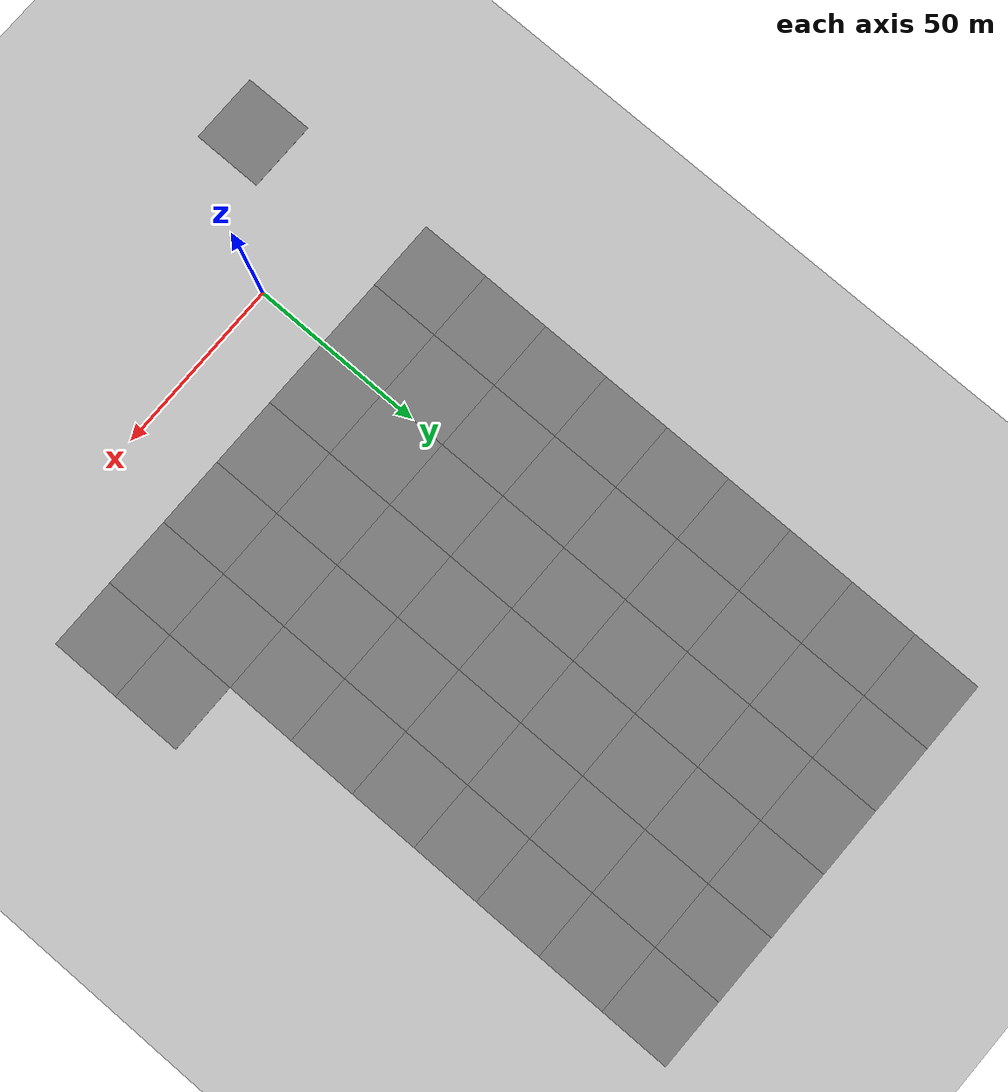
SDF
<sdf version="1.9">
 <world name="test_city_4">
  <model name="ground_plane">
   <static>true</static>
   <link name="link">
    <collision name="collision">
     <geometry><plane><normal>0 0 1</normal><size>500 500</size></plane></geometry>
    </collision>
    <visual name="visual">
     <geometry><plane><normal>0 0 1</normal><size>500 500</size></plane></geometry>
     <material>
      <ambient>0.8 0.8 0.8 1</ambient>
      <diffuse>0.8 0.8 0.8 1</diffuse>
      <specular>0.8 0.8 0.8 1</specular>
     </material>
    </visual>
   </link>
  </model>
  <model name="asphalt_plane">
   <static>1</static>
   <link name="link">
    <collision name="collision"><geometry><box><size>20 20 0.1</size></box></geometry></collision>
    <visual name="visual">
     <cast_shadows>0</cast_shadows>
     <geometry><box><size>20 20 0.1</size></box></geometry>
     <material>
      <ambient>0.5 0.5 0.5 1</ambient>
      <diffuse>0.5 0.5 0.5 1</diffuse>
      <specular>0.2 0.2 0.2 1</specular>
      <pbr><metal><albedo_map>model://asphalt_plane/materials/textures/tarmac.png</albedo_map></metal></pbr>
     </material>
    </visual>
   </link>
   <pose>-30 -30 0 0 0 0</pose>
  </model>
  <model name="asphalt_plane_3">
   <static>1</static>
   <link name="link">
    <collision name="collision"><geometry><box><size>20 20 0.1</size></box></geometry></collision>
    <visual name="visual">
     <cast_shadows>0</cast_shadows>
     <geometry><box><size>20 20 0.1</size></box></geometry>
     <material>
      <ambient>0.5 0.5 0.5 1</ambient>
      <diffuse>0.5 0.5 0.5 1</diffuse>
      <specular>0.2 0.2 0.2 1</specular>
      <pbr><metal><albedo_map>model://asphalt_plane/materials/textures/tarmac.png</albedo_map></metal></pbr>
     </material>
    </visual>
   </link>
   <pose>-30 30 0 0 0 0</pose>
  </model>
  <model name="asphalt_plane_4">
   <static>1</static>
   <link name="link">
    <collision name="collision"><geometry><box><size>20 20 0.1</size></box></geometry></collision>
    <visual name="visual">
     <cast_shadows>0</cast_shadows>
     <geometry><box><size>20 20 0.1</size></box></geometry>
     <material>
      <ambient>0.5 0.5 0.5 1</ambient>
      <diffuse>0.5 0.5 0.5 1</diffuse>
      <specular>0.2 0.2 0.2 1</specular>
      <pbr><metal><albedo_map>model://asphalt_plane/materials/textures/tarmac.png</albedo_map></metal></pbr>
     </material>
    </visual>
   </link>
   <pose>-30 50 0 0 0 0</pose>
  </model>
  <model name="asphalt_plane_5">
   <static>1</static>
   <link name="link">
    <collision name="collision"><geometry><box><size>20 20 0.1</size></box></geometry></collision>
    <visual name="visual">
     <cast_shadows>0</cast_shadows>
     <geometry><box><size>20 20 0.1</size></box></geometry>
     <material>
      <ambient>0.5 0.5 0.5 1</ambient>
      <diffuse>0.5 0.5 0.5 1</diffuse>
      <specular>0.2 0.2 0.2 1</specular>
      <pbr><metal><albedo_map>model://asphalt_plane/materials/textures/tarmac.png</albedo_map></metal></pbr>
     </material>
    </visual>
   </link>
   <pose>-30 70 0 0 0 0</pose>
  </model>
  <model name="asphalt_plane_6">
   <static>1</static>
   <link name="link">
    <collision name="collision"><geometry><box><size>20 20 0.1</size></box></geometry></collision>
    <visual name="visual">
     <cast_shadows>0</cast_shadows>
     <geometry><box><size>20 20 0.1</size></box></geometry>
     <material>
      <ambient>0.5 0.5 0.5 1</ambient>
      <diffuse>0.5 0.5 0.5 1</diffuse>
      <specular>0.2 0.2 0.2 1</specular>
      <pbr><metal><albedo_map>model://asphalt_plane/materials/textures/tarmac.png</albedo_map></metal></pbr>
     </material>
    </visual>
   </link>
   <pose>-30 90 0 0 0 0</pose>
  </model>
  <model name="asphalt_plane_7">
   <static>1</static>
   <link name="link">
    <collision name="collision"><geometry><box><size>20 20 0.1</size></box></geometry></collision>
    <visual name="visual">
     <cast_shadows>0</cast_shadows>
     <geometry><box><size>20 20 0.1</size></box></geometry>
     <material>
      <ambient>0.5 0.5 0.5 1</ambient>
      <diffuse>0.5 0.5 0.5 1</diffuse>
      <specular>0.2 0.2 0.2 1</specular>
      <pbr><metal><albedo_map>model://asphalt_plane/materials/textures/tarmac.png</albedo_map></metal></pbr>
     </material>
    </visual>
   </link>
   <pose>-30 110 0 0 0 0</pose>
  </model>
  <model name="asphalt_plane_8">
   <static>1</static>
   <link name="link">
    <collision name="collision"><geometry><box><size>20 20 0.1</size></box></geometry></collision>
    <visual name="visual">
     <cast_shadows>0</cast_shadows>
     <geometry><box><size>20 20 0.1</size></box></geometry>
     <material>
      <ambient>0.5 0.5 0.5 1</ambient>
      <diffuse>0.5 0.5 0.5 1</diffuse>
      <specular>0.2 0.2 0.2 1</specular>
      <pbr><metal><albedo_map>model://asphalt_plane/materials/textures/tarmac.png</albedo_map></metal></pbr>
     </material>
    </visual>
   </link>
   <pose>-30 130 0 0 0 0</pose>
  </model>
  <model name="asphalt_plane_9">
   <static>1</static>
   <link name="link">
    <collision name="collision"><geometry><box><size>20 20 0.1</size></box></geometry></collision>
    <visual name="visual">
     <cast_shadows>0</cast_shadows>
     <geometry><box><size>20 20 0.1</size></box></geometry>
     <material>
      <ambient>0.5 0.5 0.5 1</ambient>
      <diffuse>0.5 0.5 0.5 1</diffuse>
      <specular>0.2 0.2 0.2 1</specular>
      <pbr><metal><albedo_map>model://asphalt_plane/materials/textures/tarmac.png</albedo_map></metal></pbr>
     </material>
    </visual>
   </link>
   <pose>-30 150 0 0 0 0</pose>
  </model>
  <model name="asphalt_plane_10">
   <static>1</static>
   <link name="link">
    <collision name="collision"><geometry><box><size>20 20 0.1</size></box></geometry></collision>
    <visual name="visual">
     <cast_shadows>0</cast_shadows>
     <geometry><box><size>20 20 0.1</size></box></geometry>
     <material>
      <ambient>0.5 0.5 0.5 1</ambient>
      <diffuse>0.5 0.5 0.5 1</diffuse>
      <specular>0.2 0.2 0.2 1</specular>
      <pbr><metal><albedo_map>model://asphalt_plane/materials/textures/tarmac.png</albedo_map></metal></pbr>
     </material>
    </visual>
   </link>
   <pose>-30 170 0 0 0 0</pose>
  </model>
  <model name="asphalt_plane_11">
   <static>1</static>
   <link name="link">
    <collision name="collision"><geometry><box><size>20 20 0.1</size></box></geometry></collision>
    <visual name="visual">
     <cast_shadows>0</cast_shadows>
     <geometry><box><size>20 20 0.1</size></box></geometry>
     <material>
      <ambient>0.5 0.5 0.5 1</ambient>
      <diffuse>0.5 0.5 0.5 1</diffuse>
      <specular>0.2 0.2 0.2 1</specular>
      <pbr><metal><albedo_map>model://asphalt_plane/materials/textures/tarmac.png</albedo_map></metal></pbr>
     </material>
    </visual>
   </link>
   <pose>-30 190 0 0 0 0</pose>
  </model>
  <model name="asphalt_plane_15">
   <static>1</static>
   <link name="link">
    <collision name="collision"><geometry><box><size>20 20 0.1</size></box></geometry></collision>
    <visual name="visual">
     <cast_shadows>0</cast_shadows>
     <geometry><box><size>20 20 0.1</size></box></geometry>
     <material>
      <ambient>0.5 0.5 0.5 1</ambient>
      <diffuse>0.5 0.5 0.5 1</diffuse>
      <specular>0.2 0.2 0.2 1</specular>
      <pbr><metal><albedo_map>model://asphalt_plane/materials/textures/tarmac.png</albedo_map></metal></pbr>
     </material>
    </visual>
   </link>
   <pose>-10 30 0 0 0 0</pose>
  </model>
  <model name="asphalt_plane_16">
   <static>1</static>
   <link name="link">
    <collision name="collision"><geometry><box><size>20 20 0.1</size></box></geometry></collision>
    <visual name="visual">
     <cast_shadows>0</cast_shadows>
     <geometry><box><size>20 20 0.1</size></box></geometry>
     <material>
      <ambient>0.5 0.5 0.5 1</ambient>
      <diffuse>0.5 0.5 0.5 1</diffuse>
      <specular>0.2 0.2 0.2 1</specular>
      <pbr><metal><albedo_map>model://asphalt_plane/materials/textures/tarmac.png</albedo_map></metal></pbr>
     </material>
    </visual>
   </link>
   <pose>-10 50 0 0 0 0</pose>
  </model>
  <model name="asphalt_plane_17">
   <static>1</static>
   <link name="link">
    <collision name="collision"><geometry><box><size>20 20 0.1</size></box></geometry></collision>
    <visual name="visual">
     <cast_shadows>0</cast_shadows>
     <geometry><box><size>20 20 0.1</size></box></geometry>
     <material>
      <ambient>0.5 0.5 0.5 1</ambient>
      <diffuse>0.5 0.5 0.5 1</diffuse>
      <specular>0.2 0.2 0.2 1</specular>
      <pbr><metal><albedo_map>model://asphalt_plane/materials/textures/tarmac.png</albedo_map></metal></pbr>
     </material>
    </visual>
   </link>
   <pose>-10 70 0 0 0 0</pose>
  </model>
  <model name="asphalt_plane_18">
   <static>1</static>
   <link name="link">
    <collision name="collision"><geometry><box><size>20 20 0.1</size></box></geometry></collision>
    <visual name="visual">
     <cast_shadows>0</cast_shadows>
     <geometry><box><size>20 20 0.1</size></box></geometry>
     <material>
      <ambient>0.5 0.5 0.5 1</ambient>
      <diffuse>0.5 0.5 0.5 1</diffuse>
      <specular>0.2 0.2 0.2 1</specular>
      <pbr><metal><albedo_map>model://asphalt_plane/materials/textures/tarmac.png</albedo_map></metal></pbr>
     </material>
    </visual>
   </link>
   <pose>-10 90 0 0 0 0</pose>
  </model>
  <model name="asphalt_plane_19">
   <static>1</static>
   <link name="link">
    <collision name="collision"><geometry><box><size>20 20 0.1</size></box></geometry></collision>
    <visual name="visual">
     <cast_shadows>0</cast_shadows>
     <geometry><box><size>20 20 0.1</size></box></geometry>
     <material>
      <ambient>0.5 0.5 0.5 1</ambient>
      <diffuse>0.5 0.5 0.5 1</diffuse>
      <specular>0.2 0.2 0.2 1</specular>
      <pbr><metal><albedo_map>model://asphalt_plane/materials/textures/tarmac.png</albedo_map></metal></pbr>
     </material>
    </visual>
   </link>
   <pose>-10 110 0 0 0 0</pose>
  </model>
  <model name="asphalt_plane_20">
   <static>1</static>
   <link name="link">
    <collision name="collision"><geometry><box><size>20 20 0.1</size></box></geometry></collision>
    <visual name="visual">
     <cast_shadows>0</cast_shadows>
     <geometry><box><size>20 20 0.1</size></box></geometry>
     <material>
      <ambient>0.5 0.5 0.5 1</ambient>
      <diffuse>0.5 0.5 0.5 1</diffuse>
      <specular>0.2 0.2 0.2 1</specular>
      <pbr><metal><albedo_map>model://asphalt_plane/materials/textures/tarmac.png</albedo_map></metal></pbr>
     </material>
    </visual>
   </link>
   <pose>-10 130 0 0 0 0</pose>
  </model>
  <model name="asphalt_plane_21">
   <static>1</static>
   <link name="link">
    <collision name="collision"><geometry><box><size>20 20 0.1</size></box></geometry></collision>
    <visual name="visual">
     <cast_shadows>0</cast_shadows>
     <geometry><box><size>20 20 0.1</size></box></geometry>
     <material>
      <ambient>0.5 0.5 0.5 1</ambient>
      <diffuse>0.5 0.5 0.5 1</diffuse>
      <specular>0.2 0.2 0.2 1</specular>
      <pbr><metal><albedo_map>model://asphalt_plane/materials/textures/tarmac.png</albedo_map></metal></pbr>
     </material>
    </visual>
   </link>
   <pose>-10 150 0 0 0 0</pose>
  </model>
  <model name="asphalt_plane_22">
   <static>1</static>
   <link name="link">
    <collision name="collision"><geometry><box><size>20 20 0.1</size></box></geometry></collision>
    <visual name="visual">
     <cast_shadows>0</cast_shadows>
     <geometry><box><size>20 20 0.1</size></box></geometry>
     <material>
      <ambient>0.5 0.5 0.5 1</ambient>
      <diffuse>0.5 0.5 0.5 1</diffuse>
      <specular>0.2 0.2 0.2 1</specular>
      <pbr><metal><albedo_map>model://asphalt_plane/materials/textures/tarmac.png</albedo_map></metal></pbr>
     </material>
    </visual>
   </link>
   <pose>-10 170 0 0 0 0</pose>
  </model>
  <model name="asphalt_plane_23">
   <static>1</static>
   <link name="link">
    <collision name="collision"><geometry><box><size>20 20 0.1</size></box></geometry></collision>
    <visual name="visual">
     <cast_shadows>0</cast_shadows>
     <geometry><box><size>20 20 0.1</size></box></geometry>
     <material>
      <ambient>0.5 0.5 0.5 1</ambient>
      <diffuse>0.5 0.5 0.5 1</diffuse>
      <specular>0.2 0.2 0.2 1</specular>
      <pbr><metal><albedo_map>model://asphalt_plane/materials/textures/tarmac.png</albedo_map></metal></pbr>
     </material>
    </visual>
   </link>
   <pose>-10 190 0 0 0 0</pose>
  </model>
  <model name="asphalt_plane_27">
   <static>1</static>
   <link name="link">
    <collision name="collision"><geometry><box><size>20 20 0.1</size></box></geometry></collision>
    <visual name="visual">
     <cast_shadows>0</cast_shadows>
     <geometry><box><size>20 20 0.1</size></box></geometry>
     <material>
      <ambient>0.5 0.5 0.5 1</ambient>
      <diffuse>0.5 0.5 0.5 1</diffuse>
      <specular>0.2 0.2 0.2 1</specular>
      <pbr><metal><albedo_map>model://asphalt_plane/materials/textures/tarmac.png</albedo_map></metal></pbr>
     </material>
    </visual>
   </link>
   <pose>10 30 0 0 0 0</pose>
  </model>
  <model name="asphalt_plane_28">
   <static>1</static>
   <link name="link">
    <collision name="collision"><geometry><box><size>20 20 0.1</size></box></geometry></collision>
    <visual name="visual">
     <cast_shadows>0</cast_shadows>
     <geometry><box><size>20 20 0.1</size></box></geometry>
     <material>
      <ambient>0.5 0.5 0.5 1</ambient>
      <diffuse>0.5 0.5 0.5 1</diffuse>
      <specular>0.2 0.2 0.2 1</specular>
      <pbr><metal><albedo_map>model://asphalt_plane/materials/textures/tarmac.png</albedo_map></metal></pbr>
     </material>
    </visual>
   </link>
   <pose>10 50 0 0 0 0</pose>
  </model>
  <model name="asphalt_plane_29">
   <static>1</static>
   <link name="link">
    <collision name="collision"><geometry><box><size>20 20 0.1</size></box></geometry></collision>
    <visual name="visual">
     <cast_shadows>0</cast_shadows>
     <geometry><box><size>20 20 0.1</size></box></geometry>
     <material>
      <ambient>0.5 0.5 0.5 1</ambient>
      <diffuse>0.5 0.5 0.5 1</diffuse>
      <specular>0.2 0.2 0.2 1</specular>
      <pbr><metal><albedo_map>model://asphalt_plane/materials/textures/tarmac.png</albedo_map></metal></pbr>
     </material>
    </visual>
   </link>
   <pose>10 70 0 0 0 0</pose>
  </model>
  <model name="asphalt_plane_30">
   <static>1</static>
   <link name="link">
    <collision name="collision"><geometry><box><size>20 20 0.1</size></box></geometry></collision>
    <visual name="visual">
     <cast_shadows>0</cast_shadows>
     <geometry><box><size>20 20 0.1</size></box></geometry>
     <material>
      <ambient>0.5 0.5 0.5 1</ambient>
      <diffuse>0.5 0.5 0.5 1</diffuse>
      <specular>0.2 0.2 0.2 1</specular>
      <pbr><metal><albedo_map>model://asphalt_plane/materials/textures/tarmac.png</albedo_map></metal></pbr>
     </material>
    </visual>
   </link>
   <pose>10 90 0 0 0 0</pose>
  </model>
  <model name="asphalt_plane_31">
   <static>1</static>
   <link name="link">
    <collision name="collision"><geometry><box><size>20 20 0.1</size></box></geometry></collision>
    <visual name="visual">
     <cast_shadows>0</cast_shadows>
     <geometry><box><size>20 20 0.1</size></box></geometry>
     <material>
      <ambient>0.5 0.5 0.5 1</ambient>
      <diffuse>0.5 0.5 0.5 1</diffuse>
      <specular>0.2 0.2 0.2 1</specular>
      <pbr><metal><albedo_map>model://asphalt_plane/materials/textures/tarmac.png</albedo_map></metal></pbr>
     </material>
    </visual>
   </link>
   <pose>10 110 0 0 0 0</pose>
  </model>
  <model name="asphalt_plane_32">
   <static>1</static>
   <link name="link">
    <collision name="collision"><geometry><box><size>20 20 0.1</size></box></geometry></collision>
    <visual name="visual">
     <cast_shadows>0</cast_shadows>
     <geometry><box><size>20 20 0.1</size></box></geometry>
     <material>
      <ambient>0.5 0.5 0.5 1</ambient>
      <diffuse>0.5 0.5 0.5 1</diffuse>
      <specular>0.2 0.2 0.2 1</specular>
      <pbr><metal><albedo_map>model://asphalt_plane/materials/textures/tarmac.png</albedo_map></metal></pbr>
     </material>
    </visual>
   </link>
   <pose>10 130 0 0 0 0</pose>
  </model>
  <model name="asphalt_plane_33">
   <static>1</static>
   <link name="link">
    <collision name="collision"><geometry><box><size>20 20 0.1</size></box></geometry></collision>
    <visual name="visual">
     <cast_shadows>0</cast_shadows>
     <geometry><box><size>20 20 0.1</size></box></geometry>
     <material>
      <ambient>0.5 0.5 0.5 1</ambient>
      <diffuse>0.5 0.5 0.5 1</diffuse>
      <specular>0.2 0.2 0.2 1</specular>
      <pbr><metal><albedo_map>model://asphalt_plane/materials/textures/tarmac.png</albedo_map></metal></pbr>
     </material>
    </visual>
   </link>
   <pose>10 150 0 0 0 0</pose>
  </model>
  <model name="asphalt_plane_34">
   <static>1</static>
   <link name="link">
    <collision name="collision"><geometry><box><size>20 20 0.1</size></box></geometry></collision>
    <visual name="visual">
     <cast_shadows>0</cast_shadows>
     <geometry><box><size>20 20 0.1</size></box></geometry>
     <material>
      <ambient>0.5 0.5 0.5 1</ambient>
      <diffuse>0.5 0.5 0.5 1</diffuse>
      <specular>0.2 0.2 0.2 1</specular>
      <pbr><metal><albedo_map>model://asphalt_plane/materials/textures/tarmac.png</albedo_map></metal></pbr>
     </material>
    </visual>
   </link>
   <pose>10 170 0 0 0 0</pose>
  </model>
  <model name="asphalt_plane_35">
   <static>1</static>
   <link name="link">
    <collision name="collision"><geometry><box><size>20 20 0.1</size></box></geometry></collision>
    <visual name="visual">
     <cast_shadows>0</cast_shadows>
     <geometry><box><size>20 20 0.1</size></box></geometry>
     <material>
      <ambient>0.5 0.5 0.5 1</ambient>
      <diffuse>0.5 0.5 0.5 1</diffuse>
      <specular>0.2 0.2 0.2 1</specular>
      <pbr><metal><albedo_map>model://asphalt_plane/materials/textures/tarmac.png</albedo_map></metal></pbr>
     </material>
    </visual>
   </link>
   <pose>10 190 0 0 0 0</pose>
  </model>
  <model name="asphalt_plane_39">
   <static>1</static>
   <link name="link">
    <collision name="collision"><geometry><box><size>20 20 0.1</size></box></geometry></collision>
    <visual name="visual">
     <cast_shadows>0</cast_shadows>
     <geometry><box><size>20 20 0.1</size></box></geometry>
     <material>
      <ambient>0.5 0.5 0.5 1</ambient>
      <diffuse>0.5 0.5 0.5 1</diffuse>
      <specular>0.2 0.2 0.2 1</specular>
      <pbr><metal><albedo_map>model://asphalt_plane/materials/textures/tarmac.png</albedo_map></metal></pbr>
     </material>
    </visual>
   </link>
   <pose>30 30 0 0 0 0</pose>
  </model>
  <model name="asphalt_plane_40">
   <static>1</static>
   <link name="link">
    <collision name="collision"><geometry><box><size>20 20 0.1</size></box></geometry></collision>
    <visual name="visual">
     <cast_shadows>0</cast_shadows>
     <geometry><box><size>20 20 0.1</size></box></geometry>
     <material>
      <ambient>0.5 0.5 0.5 1</ambient>
      <diffuse>0.5 0.5 0.5 1</diffuse>
      <specular>0.2 0.2 0.2 1</specular>
      <pbr><metal><albedo_map>model://asphalt_plane/materials/textures/tarmac.png</albedo_map></metal></pbr>
     </material>
    </visual>
   </link>
   <pose>30 50 0 0 0 0</pose>
  </model>
  <model name="asphalt_plane_41">
   <static>1</static>
   <link name="link">
    <collision name="collision"><geometry><box><size>20 20 0.1</size></box></geometry></collision>
    <visual name="visual">
     <cast_shadows>0</cast_shadows>
     <geometry><box><size>20 20 0.1</size></box></geometry>
     <material>
      <ambient>0.5 0.5 0.5 1</ambient>
      <diffuse>0.5 0.5 0.5 1</diffuse>
      <specular>0.2 0.2 0.2 1</specular>
      <pbr><metal><albedo_map>model://asphalt_plane/materials/textures/tarmac.png</albedo_map></metal></pbr>
     </material>
    </visual>
   </link>
   <pose>30 70 0 0 0 0</pose>
  </model>
  <model name="asphalt_plane_42">
   <static>1</static>
   <link name="link">
    <collision name="collision"><geometry><box><size>20 20 0.1</size></box></geometry></collision>
    <visual name="visual">
     <cast_shadows>0</cast_shadows>
     <geometry><box><size>20 20 0.1</size></box></geometry>
     <material>
      <ambient>0.5 0.5 0.5 1</ambient>
      <diffuse>0.5 0.5 0.5 1</diffuse>
      <specular>0.2 0.2 0.2 1</specular>
      <pbr><metal><albedo_map>model://asphalt_plane/materials/textures/tarmac.png</albedo_map></metal></pbr>
     </material>
    </visual>
   </link>
   <pose>30 90 0 0 0 0</pose>
  </model>
  <model name="asphalt_plane_43">
   <static>1</static>
   <link name="link">
    <collision name="collision"><geometry><box><size>20 20 0.1</size></box></geometry></collision>
    <visual name="visual">
     <cast_shadows>0</cast_shadows>
     <geometry><box><size>20 20 0.1</size></box></geometry>
     <material>
      <ambient>0.5 0.5 0.5 1</ambient>
      <diffuse>0.5 0.5 0.5 1</diffuse>
      <specular>0.2 0.2 0.2 1</specular>
      <pbr><metal><albedo_map>model://asphalt_plane/materials/textures/tarmac.png</albedo_map></metal></pbr>
     </material>
    </visual>
   </link>
   <pose>30 110 0 0 0 0</pose>
  </model>
  <model name="asphalt_plane_44">
   <static>1</static>
   <link name="link">
    <collision name="collision"><geometry><box><size>20 20 0.1</size></box></geometry></collision>
    <visual name="visual">
     <cast_shadows>0</cast_shadows>
     <geometry><box><size>20 20 0.1</size></box></geometry>
     <material>
      <ambient>0.5 0.5 0.5 1</ambient>
      <diffuse>0.5 0.5 0.5 1</diffuse>
      <specular>0.2 0.2 0.2 1</specular>
      <pbr><metal><albedo_map>model://asphalt_plane/materials/textures/tarmac.png</albedo_map></metal></pbr>
     </material>
    </visual>
   </link>
   <pose>30 130 0 0 0 0</pose>
  </model>
  <model name="asphalt_plane_45">
   <static>1</static>
   <link name="link">
    <collision name="collision"><geometry><box><size>20 20 0.1</size></box></geometry></collision>
    <visual name="visual">
     <cast_shadows>0</cast_shadows>
     <geometry><box><size>20 20 0.1</size></box></geometry>
     <material>
      <ambient>0.5 0.5 0.5 1</ambient>
      <diffuse>0.5 0.5 0.5 1</diffuse>
      <specular>0.2 0.2 0.2 1</specular>
      <pbr><metal><albedo_map>model://asphalt_plane/materials/textures/tarmac.png</albedo_map></metal></pbr>
     </material>
    </visual>
   </link>
   <pose>30 150 0 0 0 0</pose>
  </model>
  <model name="asphalt_plane_46">
   <static>1</static>
   <link name="link">
    <collision name="collision"><geometry><box><size>20 20 0.1</size></box></geometry></collision>
    <visual name="visual">
     <cast_shadows>0</cast_shadows>
     <geometry><box><size>20 20 0.1</size></box></geometry>
     <material>
      <ambient>0.5 0.5 0.5 1</ambient>
      <diffuse>0.5 0.5 0.5 1</diffuse>
      <specular>0.2 0.2 0.2 1</specular>
      <pbr><metal><albedo_map>model://asphalt_plane/materials/textures/tarmac.png</albedo_map></metal></pbr>
     </material>
    </visual>
   </link>
   <pose>30 170 0 0 0 0</pose>
  </model>
  <model name="asphalt_plane_47">
   <static>1</static>
   <link name="link">
    <collision name="collision"><geometry><box><size>20 20 0.1</size></box></geometry></collision>
    <visual name="visual">
     <cast_shadows>0</cast_shadows>
     <geometry><box><size>20 20 0.1</size></box></geometry>
     <material>
      <ambient>0.5 0.5 0.5 1</ambient>
      <diffuse>0.5 0.5 0.5 1</diffuse>
      <specular>0.2 0.2 0.2 1</specular>
      <pbr><metal><albedo_map>model://asphalt_plane/materials/textures/tarmac.png</albedo_map></metal></pbr>
     </material>
    </visual>
   </link>
   <pose>30 190 0 0 0 0</pose>
  </model>
  <model name="asphalt_plane_51">
   <static>1</static>
   <link name="link">
    <collision name="collision"><geometry><box><size>20 20 0.1</size></box></geometry></collision>
    <visual name="visual">
     <cast_shadows>0</cast_shadows>
     <geometry><box><size>20 20 0.1</size></box></geometry>
     <material>
      <ambient>0.5 0.5 0.5 1</ambient>
      <diffuse>0.5 0.5 0.5 1</diffuse>
      <specular>0.2 0.2 0.2 1</specular>
      <pbr><metal><albedo_map>model://asphalt_plane/materials/textures/tarmac.png</albedo_map></metal></pbr>
     </material>
    </visual>
   </link>
   <pose>50 30 0 0 0 0</pose>
  </model>
  <model name="asphalt_plane_52">
   <static>1</static>
   <link name="link">
    <collision name="collision"><geometry><box><size>20 20 0.1</size></box></geometry></collision>
    <visual name="visual">
     <cast_shadows>0</cast_shadows>
     <geometry><box><size>20 20 0.1</size></box></geometry>
     <material>
      <ambient>0.5 0.5 0.5 1</ambient>
      <diffuse>0.5 0.5 0.5 1</diffuse>
      <specular>0.2 0.2 0.2 1</specular>
      <pbr><metal><albedo_map>model://asphalt_plane/materials/textures/tarmac.png</albedo_map></metal></pbr>
     </material>
    </visual>
   </link>
   <pose>50 50 0 0 0 0</pose>
  </model>
  <model name="asphalt_plane_53">
   <static>1</static>
   <link name="link">
    <collision name="collision"><geometry><box><size>20 20 0.1</size></box></geometry></collision>
    <visual name="visual">
     <cast_shadows>0</cast_shadows>
     <geometry><box><size>20 20 0.1</size></box></geometry>
     <material>
      <ambient>0.5 0.5 0.5 1</ambient>
      <diffuse>0.5 0.5 0.5 1</diffuse>
      <specular>0.2 0.2 0.2 1</specular>
      <pbr><metal><albedo_map>model://asphalt_plane/materials/textures/tarmac.png</albedo_map></metal></pbr>
     </material>
    </visual>
   </link>
   <pose>50 70 0 0 0 0</pose>
  </model>
  <model name="asphalt_plane_54">
   <static>1</static>
   <link name="link">
    <collision name="collision"><geometry><box><size>20 20 0.1</size></box></geometry></collision>
    <visual name="visual">
     <cast_shadows>0</cast_shadows>
     <geometry><box><size>20 20 0.1</size></box></geometry>
     <material>
      <ambient>0.5 0.5 0.5 1</ambient>
      <diffuse>0.5 0.5 0.5 1</diffuse>
      <specular>0.2 0.2 0.2 1</specular>
      <pbr><metal><albedo_map>model://asphalt_plane/materials/textures/tarmac.png</albedo_map></metal></pbr>
     </material>
    </visual>
   </link>
   <pose>50 90 0 0 0 0</pose>
  </model>
  <model name="asphalt_plane_55">
   <static>1</static>
   <link name="link">
    <collision name="collision"><geometry><box><size>20 20 0.1</size></box></geometry></collision>
    <visual name="visual">
     <cast_shadows>0</cast_shadows>
     <geometry><box><size>20 20 0.1</size></box></geometry>
     <material>
      <ambient>0.5 0.5 0.5 1</ambient>
      <diffuse>0.5 0.5 0.5 1</diffuse>
      <specular>0.2 0.2 0.2 1</specular>
      <pbr><metal><albedo_map>model://asphalt_plane/materials/textures/tarmac.png</albedo_map></metal></pbr>
     </material>
    </visual>
   </link>
   <pose>50 110 0 0 0 0</pose>
  </model>
  <model name="asphalt_plane_56">
   <static>1</static>
   <link name="link">
    <collision name="collision"><geometry><box><size>20 20 0.1</size></box></geometry></collision>
    <visual name="visual">
     <cast_shadows>0</cast_shadows>
     <geometry><box><size>20 20 0.1</size></box></geometry>
     <material>
      <ambient>0.5 0.5 0.5 1</ambient>
      <diffuse>0.5 0.5 0.5 1</diffuse>
      <specular>0.2 0.2 0.2 1</specular>
      <pbr><metal><albedo_map>model://asphalt_plane/materials/textures/tarmac.png</albedo_map></metal></pbr>
     </material>
    </visual>
   </link>
   <pose>50 130 0 0 0 0</pose>
  </model>
  <model name="asphalt_plane_57">
   <static>1</static>
   <link name="link">
    <collision name="collision"><geometry><box><size>20 20 0.1</size></box></geometry></collision>
    <visual name="visual">
     <cast_shadows>0</cast_shadows>
     <geometry><box><size>20 20 0.1</size></box></geometry>
     <material>
      <ambient>0.5 0.5 0.5 1</ambient>
      <diffuse>0.5 0.5 0.5 1</diffuse>
      <specular>0.2 0.2 0.2 1</specular>
      <pbr><metal><albedo_map>model://asphalt_plane/materials/textures/tarmac.png</albedo_map></metal></pbr>
     </material>
    </visual>
   </link>
   <pose>50 150 0 0 0 0</pose>
  </model>
  <model name="asphalt_plane_58">
   <static>1</static>
   <link name="link">
    <collision name="collision"><geometry><box><size>20 20 0.1</size></box></geometry></collision>
    <visual name="visual">
     <cast_shadows>0</cast_shadows>
     <geometry><box><size>20 20 0.1</size></box></geometry>
     <material>
      <ambient>0.5 0.5 0.5 1</ambient>
      <diffuse>0.5 0.5 0.5 1</diffuse>
      <specular>0.2 0.2 0.2 1</specular>
      <pbr><metal><albedo_map>model://asphalt_plane/materials/textures/tarmac.png</albedo_map></metal></pbr>
     </material>
    </visual>
   </link>
   <pose>50 170 0 0 0 0</pose>
  </model>
  <model name="asphalt_plane_59">
   <static>1</static>
   <link name="link">
    <collision name="collision"><geometry><box><size>20 20 0.1</size></box></geometry></collision>
    <visual name="visual">
     <cast_shadows>0</cast_shadows>
     <geometry><box><size>20 20 0.1</size></box></geometry>
     <material>
      <ambient>0.5 0.5 0.5 1</ambient>
      <diffuse>0.5 0.5 0.5 1</diffuse>
      <specular>0.2 0.2 0.2 1</specular>
      <pbr><metal><albedo_map>model://asphalt_plane/materials/textures/tarmac.png</albedo_map></metal></pbr>
     </material>
    </visual>
   </link>
   <pose>50 190 0 0 0 0</pose>
  </model>
  <model name="asphalt_plane_63">
   <static>1</static>
   <link name="link">
    <collision name="collision"><geometry><box><size>20 20 0.1</size></box></geometry></collision>
    <visual name="visual">
     <cast_shadows>0</cast_shadows>
     <geometry><box><size>20 20 0.1</size></box></geometry>
     <material>
      <ambient>0.5 0.5 0.5 1</ambient>
      <diffuse>0.5 0.5 0.5 1</diffuse>
      <specular>0.2 0.2 0.2 1</specular>
      <pbr><metal><albedo_map>model://asphalt_plane/materials/textures/tarmac.png</albedo_map></metal></pbr>
     </material>
    </visual>
   </link>
   <pose>70 30 0 0 0 0</pose>
  </model>
  <model name="asphalt_plane_64">
   <static>1</static>
   <link name="link">
    <collision name="collision"><geometry><box><size>20 20 0.1</size></box></geometry></collision>
    <visual name="visual">
     <cast_shadows>0</cast_shadows>
     <geometry><box><size>20 20 0.1</size></box></geometry>
     <material>
      <ambient>0.5 0.5 0.5 1</ambient>
      <diffuse>0.5 0.5 0.5 1</diffuse>
      <specular>0.2 0.2 0.2 1</specular>
      <pbr><metal><albedo_map>model://asphalt_plane/materials/textures/tarmac.png</albedo_map></metal></pbr>
     </material>
    </visual>
   </link>
   <pose>70 50 0 0 0 0</pose>
  </model>
  <model name="asphalt_plane_65">
   <static>1</static>
   <link name="link">
    <collision name="collision"><geometry><box><size>20 20 0.1</size></box></geometry></collision>
    <visual name="visual">
     <cast_shadows>0</cast_shadows>
     <geometry><box><size>20 20 0.1</size></box></geometry>
     <material>
      <ambient>0.5 0.5 0.5 1</ambient>
      <diffuse>0.5 0.5 0.5 1</diffuse>
      <specular>0.2 0.2 0.2 1</specular>
      <pbr><metal><albedo_map>model://asphalt_plane/materials/textures/tarmac.png</albedo_map></metal></pbr>
     </material>
    </visual>
   </link>
   <pose>70 70 0 0 0 0</pose>
  </model>
  <model name="asphalt_plane_66">
   <static>1</static>
   <link name="link">
    <collision name="collision"><geometry><box><size>20 20 0.1</size></box></geometry></collision>
    <visual name="visual">
     <cast_shadows>0</cast_shadows>
     <geometry><box><size>20 20 0.1</size></box></geometry>
     <material>
      <ambient>0.5 0.5 0.5 1</ambient>
      <diffuse>0.5 0.5 0.5 1</diffuse>
      <specular>0.2 0.2 0.2 1</specular>
      <pbr><metal><albedo_map>model://asphalt_plane/materials/textures/tarmac.png</albedo_map></metal></pbr>
     </material>
    </visual>
   </link>
   <pose>70 90 0 0 0 0</pose>
  </model>
  <model name="asphalt_plane_67">
   <static>1</static>
   <link name="link">
    <collision name="collision"><geometry><box><size>20 20 0.1</size></box></geometry></collision>
    <visual name="visual">
     <cast_shadows>0</cast_shadows>
     <geometry><box><size>20 20 0.1</size></box></geometry>
     <material>
      <ambient>0.5 0.5 0.5 1</ambient>
      <diffuse>0.5 0.5 0.5 1</diffuse>
      <specular>0.2 0.2 0.2 1</specular>
      <pbr><metal><albedo_map>model://asphalt_plane/materials/textures/tarmac.png</albedo_map></metal></pbr>
     </material>
    </visual>
   </link>
   <pose>70 110 0 0 0 0</pose>
  </model>
  <model name="asphalt_plane_68">
   <static>1</static>
   <link name="link">
    <collision name="collision"><geometry><box><size>20 20 0.1</size></box></geometry></collision>
    <visual name="visual">
     <cast_shadows>0</cast_shadows>
     <geometry><box><size>20 20 0.1</size></box></geometry>
     <material>
      <ambient>0.5 0.5 0.5 1</ambient>
      <diffuse>0.5 0.5 0.5 1</diffuse>
      <specular>0.2 0.2 0.2 1</specular>
      <pbr><metal><albedo_map>model://asphalt_plane/materials/textures/tarmac.png</albedo_map></metal></pbr>
     </material>
    </visual>
   </link>
   <pose>70 130 0 0 0 0</pose>
  </model>
  <model name="asphalt_plane_69">
   <static>1</static>
   <link name="link">
    <collision name="collision"><geometry><box><size>20 20 0.1</size></box></geometry></collision>
    <visual name="visual">
     <cast_shadows>0</cast_shadows>
     <geometry><box><size>20 20 0.1</size></box></geometry>
     <material>
      <ambient>0.5 0.5 0.5 1</ambient>
      <diffuse>0.5 0.5 0.5 1</diffuse>
      <specular>0.2 0.2 0.2 1</specular>
      <pbr><metal><albedo_map>model://asphalt_plane/materials/textures/tarmac.png</albedo_map></metal></pbr>
     </material>
    </visual>
   </link>
   <pose>70 150 0 0 0 0</pose>
  </model>
  <model name="asphalt_plane_70">
   <static>1</static>
   <link name="link">
    <collision name="collision"><geometry><box><size>20 20 0.1</size></box></geometry></collision>
    <visual name="visual">
     <cast_shadows>0</cast_shadows>
     <geometry><box><size>20 20 0.1</size></box></geometry>
     <material>
      <ambient>0.5 0.5 0.5 1</ambient>
      <diffuse>0.5 0.5 0.5 1</diffuse>
      <specular>0.2 0.2 0.2 1</specular>
      <pbr><metal><albedo_map>model://asphalt_plane/materials/textures/tarmac.png</albedo_map></metal></pbr>
     </material>
    </visual>
   </link>
   <pose>70 170 0 0 0 0</pose>
  </model>
  <model name="asphalt_plane_71">
   <static>1</static>
   <link name="link">
    <collision name="collision"><geometry><box><size>20 20 0.1</size></box></geometry></collision>
    <visual name="visual">
     <cast_shadows>0</cast_shadows>
     <geometry><box><size>20 20 0.1</size></box></geometry>
     <material>
      <ambient>0.5 0.5 0.5 1</ambient>
      <diffuse>0.5 0.5 0.5 1</diffuse>
      <specular>0.2 0.2 0.2 1</specular>
      <pbr><metal><albedo_map>model://asphalt_plane/materials/textures/tarmac.png</albedo_map></metal></pbr>
     </material>
    </visual>
   </link>
   <pose>70 190 0 0 0 0</pose>
  </model>
  <model name="asphalt_plane_75">
   <static>1</static>
   <link name="link">
    <collision name="collision"><geometry><box><size>20 20 0.1</size></box></geometry></collision>
    <visual name="visual">
     <cast_shadows>0</cast_shadows>
     <geometry><box><size>20 20 0.1</size></box></geometry>
     <material>
      <ambient>0.5 0.5 0.5 1</ambient>
      <diffuse>0.5 0.5 0.5 1</diffuse>
      <specular>0.2 0.2 0.2 1</specular>
      <pbr><metal><albedo_map>model://asphalt_plane/materials/textures/tarmac.png</albedo_map></metal></pbr>
     </material>
    </visual>
   </link>
   <pose>90 30 0 0 0 0</pose>
  </model>
  <model name="asphalt_plane_76">
   <static>1</static>
   <link name="link">
    <collision name="collision"><geometry><box><size>20 20 0.1</size></box></geometry></collision>
    <visual name="visual">
     <cast_shadows>0</cast_shadows>
     <geometry><box><size>20 20 0.1</size></box></geometry>
     <material>
      <ambient>0.5 0.5 0.5 1</ambient>
      <diffuse>0.5 0.5 0.5 1</diffuse>
      <specular>0.2 0.2 0.2 1</specular>
      <pbr><metal><albedo_map>model://asphalt_plane/materials/textures/tarmac.png</albedo_map></metal></pbr>
     </material>
    </visual>
   </link>
   <pose>90 50 0 0 0 0</pose>
  </model>
 </world>
</sdf>
